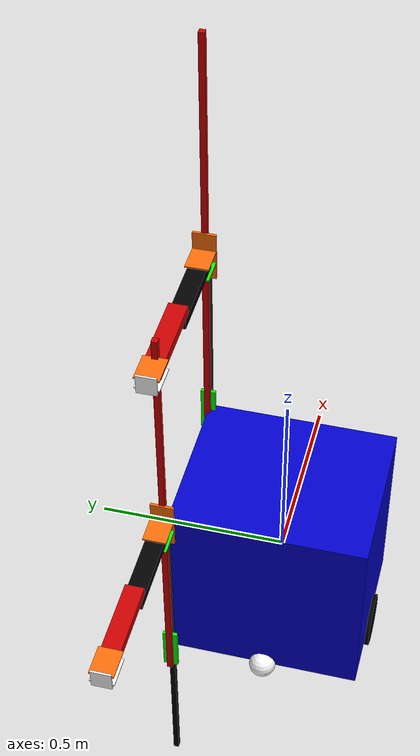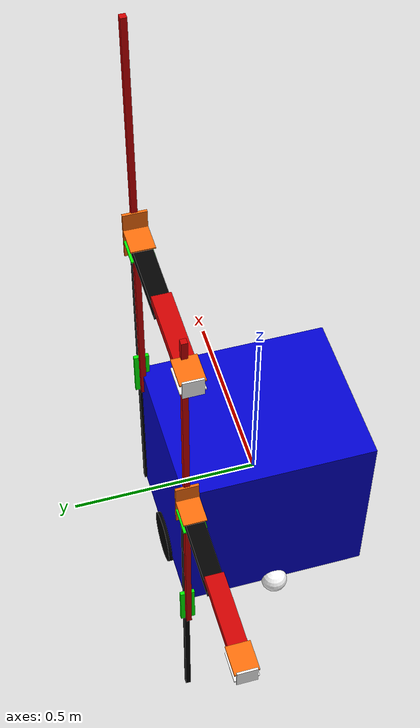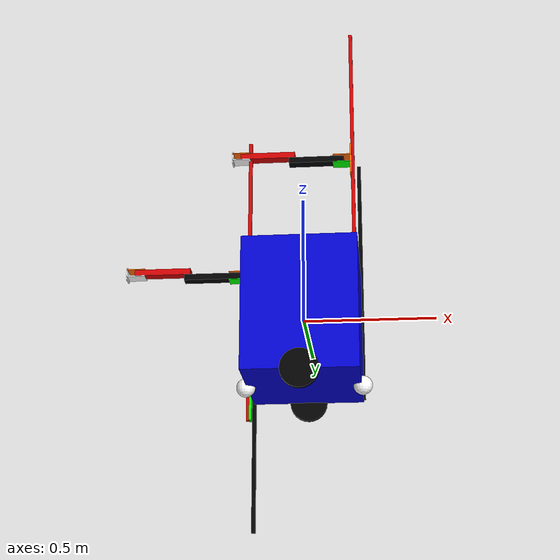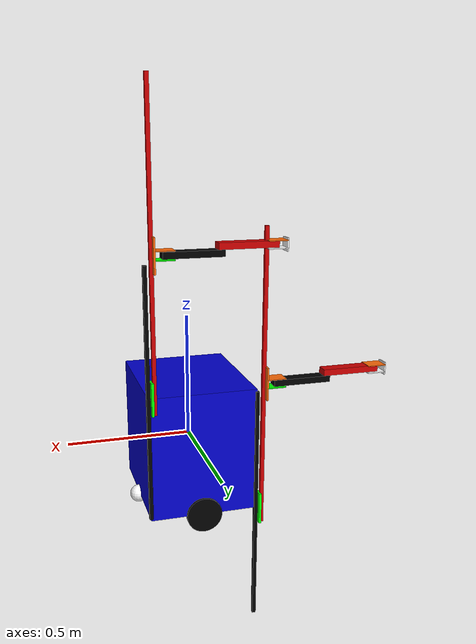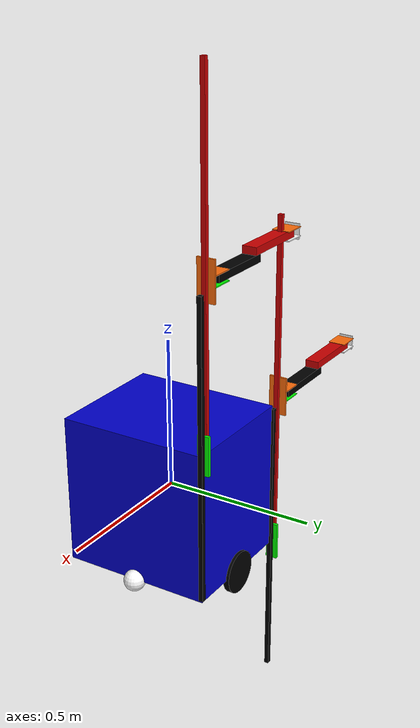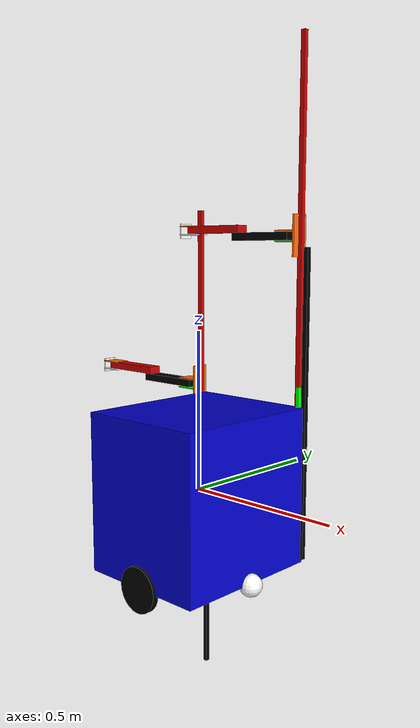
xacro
<?xml version="1.0"?>
<robot xmlns:xacro="http://www.ros.org/wiki/xacro" name="robot">

   <material name="black">
    <color rgba="0.0 0.0 0.0 1.0"/>
  </material>

  <material name="blue">
    <color rgba="0.0 0.0 0.8 1.0"/>
  </material>

  <material name="green">
    <color rgba="0.0 1.0 0.0 1.0"/>
  </material>

  <material name="grey">
    <color rgba="0.2 0.2 0.2 1.0"/>
  </material>

  <material name="orange">
    <color rgba="${255/255} ${108/255} ${10/255} 1.0"/>
  </material>

  <material name="brown">
    <color rgba="${222/255} ${207/255} ${195/255} 1.0"/>
  </material>

  <material name="red">
    <color rgba="0.8 0.0 0.0 1.0"/>
  </material>

  <material name="white">
    <color rgba="1.0 1.0 1.0 1.0"/>
  </material>

  <xacro:property name="PI" value="3.1415926535897931"/>
  <xacro:property name="base_mass" value="0.3" /> <!-- arbitrary value for base mass -->
  <xacro:property name="base_width" value="0.51" />
  <xacro:property name="base_length" value="0.43" />
  <xacro:property name="base_height" value="0.51" />
  <xacro:property name="wheel_mass" value="0.3" /> <!-- arbitrary value for wheel mass -->
  <xacro:property name="wheel_color" value="blue" />
  <xacro:property name="wheel_len" value="0.020" />
  <xacro:property name="wheel_radius" value="0.072" />
  <xacro:property name="caster_wheel_mass" value="0.1" /> <!-- arbitrary value for caster wheel mass -->
  <xacro:property name="caster_wheel_radius" value="${wheel_radius/2}" />
  <xacro:property name="z_offset" value="-${base_height/2}" /> <!-- Space btw top of beam and the each joint -->

  <xacro:property name="s0_tower_width"  value="0.015" />
  <xacro:property name="s0_tower_length" value="0.015" />
  <xacro:property name="s0_tower_height" value="1.0" />
  <xacro:property name="s0_tower_mass" value="1.0" />
  <xacro:property name="s0_tower_color" value="black" />

  <xacro:property name="s1_tower_width"  value="0.015" />
  <xacro:property name="s1_tower_length" value="0.015" />
  <xacro:property name="s1_tower_height" value="1.2" />
  <xacro:property name="s1_tower_mass" value="1.0" />
  <xacro:property name="s1_tower_color" value="red" />

  <xacro:property name="s0_slider_width"  value="0.01" />
  <xacro:property name="s0_slider_length" value="0.04" />
  <xacro:property name="s0_slider_height" value="0.131" />
  <xacro:property name="s0_slider_mass" value="1" />
  <xacro:property name="s0_slider_color" value="green" />

  <xacro:property name="s1_slider_width" value="0.007" />
  <xacro:property name="s1_slider_length" value="0.060" />
  <xacro:property name="s1_slider_height" value="0.131" />
  <xacro:property name="s1_slider_mass" value="1" />
  <xacro:property name="s1_slider_color" value="orange" />

  <xacro:property name="s1_slider_bracket_width" value="0.075" />
  <xacro:property name="s1_slider_bracket_length" value="0.060" />
  <xacro:property name="s1_slider_bracket_height" value="0.0035" />
  <xacro:property name="s1_slider_bracket_mass" value="1" />
  <xacro:property name="s1_slider_bracket_color" value="orange" />

  <xacro:property name="arm_l0_width" value="0.0475" />
  <xacro:property name="arm_l0_length" value="0.23" />
  <xacro:property name="arm_l0_height" value="0.025" />
  <xacro:property name="arm_l0_mass" value="1" />
  <xacro:property name="arm_l0_color" value="black" />

  <xacro:property name="arm_l1_width" value="0.0475" />
  <xacro:property name="arm_l1_length" value="0.23" />
  <xacro:property name="arm_l1_height" value="0.025" />
  <xacro:property name="arm_l1_mass" value="1" />
  <xacro:property name="arm_l1_color" value="red" />

  <xacro:property name="arm_l2_width" value="0.05" />
  <xacro:property name="arm_l2_length" value="0.005" />
  <xacro:property name="arm_l2_height" value="0.05" />
  <xacro:property name="arm_l2_mass" value="1" />
  <xacro:property name="arm_l2_color" value="white" />

  <xacro:property name="arm_l2_bracket_width" value="0.06" />
  <xacro:property name="arm_l2_bracket_length" value="0.075" />
  <xacro:property name="arm_l2_bracket_height" value="0.0035" />
  <xacro:property name="arm_l2_bracket_mass" value="1" />
  <xacro:property name="arm_l2_bracket_color" value="orange" />

   <link name="base_link">
     <visual>
        <origin xyz="0 0 0" rpy="0 0 0"/>
        <geometry>
           <box size="${base_length} ${base_width} ${base_height}" />
        </geometry>
        <material name="blue"/>
	</visual>
    </link>

   <!-- left wheel Link -->
    <link name="left_wheel">
      <collision>
        <origin xyz="0 0 0" rpy="${PI/2} 0 0"/>
        <geometry>
          <cylinder length="${wheel_len}" radius="${wheel_radius}"/>
        </geometry>
      </collision>

      <visual>
        <origin xyz="0 0 0" rpy="${PI/2} 0 0"/>
        <geometry>
          <cylinder length="${wheel_len}" radius="${wheel_radius}"/>
        </geometry>
        <material name="black"/>
      </visual>

      <inertial>
        <origin xyz="0 0 0" rpy="${PI/2} 0 0"/>
        <mass value="${wheel_mass}"/>
        <inertia
          ixx="${wheel_mass / 12.0 * (3*wheel_radius + wheel_len*wheel_len)}" ixy="0.0" ixz="0.0"
          iyy="${wheel_mass / 12.0 * wheel_radius*wheel_radius}" iyz="0.0"
          izz="${wheel_mass / 12.0 * wheel_radius*wheel_radius}"/>
        </inertial>
      </link>

  <joint name="left_wheel_joint" type="continuous">
      <parent link="base_link"/>
      <child link="left_wheel"/>
      <origin xyz="0 ${base_width/2} ${z_offset}" rpy="0 0 0"/>
      <axis xyz="0 1 0"/>
      <dynamics damping="0.2"/>
    </joint>

   <joint name="right_wheel_joint" type="continuous">
      <parent link="base_link"/>
      <child link="right_wheel"/>
      <origin xyz="0 ${-base_width/2} ${z_offset}" rpy="0 0 0"/>
      <axis xyz="0 1 0"/>
      <dynamics damping="0.2"/>
    </joint>

   <!-- right wheel Link -->
    <link name="right_wheel">
      <collision>
        <origin xyz="0 0 0" rpy="${PI/2} 0 0"/>
        <geometry>
          <cylinder length="${wheel_len}" radius="${wheel_radius}"/>
        </geometry>
      </collision>

      <visual>
        <origin xyz="0 0 0" rpy="${PI/2} 0 0"/>
        <geometry>
          <cylinder length="${wheel_len}" radius="${wheel_radius}"/>
        </geometry>
        <material name="black"/>
      </visual>

      <inertial>
        <origin xyz="0 0 0" rpy="${PI/2} 0 0"/>
        <mass value="${wheel_mass}"/>
        <inertia
          ixx="${wheel_mass / 12.0 * (3*wheel_radius + wheel_len*wheel_len)}" ixy="0.0" ixz="0.0"
          iyy="${wheel_mass / 12.0 * wheel_radius*wheel_radius}" iyz="0.0"
          izz="${wheel_mass / 12.0 * wheel_radius*wheel_radius}"/>
        </inertial>
      </link>

    <joint name="caster_frontal_wheel_joint" type="fixed">
      <parent link="base_link"/>
      <child link="caster_frontal_wheel"/>
      <origin xyz="${base_width/2 - caster_wheel_radius} 0 ${z_offset}" rpy="0 0 0"/>
    </joint>

    <!-- caster frontal wheel Link -->
    <link name="caster_frontal_wheel">
      <collision>
        <origin xyz="0 0 0" rpy="0 0 0"/>
        <geometry>
          <sphere radius="${caster_wheel_radius}"/>
        </geometry>
      </collision>

      <visual>
        <origin xyz="0 0 0" rpy="0 0 0"/>
        <geometry>
          <sphere radius="${caster_wheel_radius}"/>
        </geometry>
        <material name="white"/>
      </visual>

      <inertial>
        <origin xyz="0 0 0" rpy="0 0 0"/>
        <mass value="${caster_wheel_mass}"/>
        <inertia
          ixx="${caster_wheel_mass * 0.4 * (caster_wheel_radius * caster_wheel_radius)}" ixy="0.0" ixz="0.0"
          iyy="${caster_wheel_mass * 0.4 * (caster_wheel_radius * caster_wheel_radius)}" iyz="0.0"
          izz="${caster_wheel_mass * 0.4 * (caster_wheel_radius * caster_wheel_radius)}"/>
        </inertial>
      </link>

    <joint name="caster_rear_wheel_joint" type="fixed">
      <parent link="base_link"/>
      <child link="caster_rear_wheel"/>
      <origin xyz="${-base_width/2 + caster_wheel_radius} 0 ${z_offset}" rpy="0 0 0"/>
    </joint>

    <!-- caster rear wheel Link -->
    <link name="caster_rear_wheel">
      <collision>
        <origin xyz="0 0 0" rpy="0 0 0"/>
        <geometry>
          <sphere radius="${caster_wheel_radius}"/>
        </geometry>
      </collision>

      <visual>
        <origin xyz="0 0 0" rpy="0 0 0"/>
        <geometry>
          <sphere radius="${caster_wheel_radius}"/>
        </geometry>
        <material name="white"/>
      </visual>

      <inertial>
        <origin xyz="0 0 0" rpy="0 0 0"/>
        <mass value="${caster_wheel_mass}"/>
        <inertia
          ixx="${caster_wheel_mass * 0.4 * (caster_wheel_radius * caster_wheel_radius)}" ixy="0.0" ixz="0.0"
          iyy="${caster_wheel_mass * 0.4 * (caster_wheel_radius * caster_wheel_radius)}" iyz="0.0"
          izz="${caster_wheel_mass * 0.4 * (caster_wheel_radius * caster_wheel_radius)}"/>
        </inertial>
      </link>

  <link name="LT_S0_T">
    <visual>
         <geometry>
         <box size="${s0_tower_length} ${s0_tower_width} ${s0_tower_height} "/>
         </geometry>
         <material name="${s0_tower_color}"/>
     </visual>
    <collision>
         <geometry>
         <box size="${s0_tower_length} ${s0_tower_width} ${s0_tower_height} "/>
         </geometry>
      </collision>
  </link>

  <joint name="LT_J_S0_BASE_TO_T" type="fixed">
      <parent link="base_link"/>
      <child link="LT_S0_T"/>
      <origin xyz="${base_length/2} ${base_width/2} ${-z_offset}" rpy="0 0 ${PI/2}"/>
 </joint>

  <link name="L_S0_SL">
     <visual>
         <geometry>
           <box size="${s0_slider_length} ${s0_slider_width} ${s0_slider_height}" />
         </geometry>
        <material name="${s0_slider_color}"/>
      </visual>
     <collision>
         <geometry>
           <box size="${s0_slider_length} ${s0_slider_width} ${s0_slider_height}" />
         </geometry>
     </collision>
  </link>

  <joint name="LT_J_S0_T_TO_SL" type="prismatic">
      <parent link="LT_S0_T"/>
      <child link ="L_S0_SL"/>
      <origin rpy="0 0 0" xyz="0 ${s0_tower_length} 0"/>
	<axis xyz="0 0 1"/>
      <limit  lower="${-s0_tower_height/2}" upper="${s0_tower_height/2}" velocity="1.0" effort="1"/>
  </joint>

  <link name="L_S1_T">
     <visual>
         <geometry>
           <box size="${s1_tower_length}  ${s1_tower_width} ${s1_tower_height}"/>
         </geometry>
         <material name="${s1_tower_color}"/>
     </visual>
     <collision>
         <geometry>
           <box size="${s1_tower_length}  ${s1_tower_width} ${s1_tower_height}"/>
         </geometry>
      </collision>
  </link>

  <joint name="LT_J_S0_SL_TO_S1_T" type="fixed">

      <parent link ="L_S0_SL"/>
      <child   link="L_S1_T"/>
      <origin rpy="0 0 0" xyz="0 ${s0_slider_width} ${s1_tower_height/2 - s0_slider_height/2}"/>
  </joint>

  <link name="L_S1_U_SL" >
     <visual>
         <geometry>
          <box size="${s1_slider_length} ${s1_slider_width} ${s1_slider_height}" />
         </geometry>
         <material name="${s1_slider_color}"/>
     </visual>
     <collision>
         <geometry>
          <box size="${s1_slider_length} ${s1_slider_width} ${s1_slider_height}" />
         </geometry>
       </collision>
  </link>

 <joint name="LT_J_S1_T_TO_U_SL" type="prismatic">

      <parent link ="L_S1_T"/>
      <child   link="L_S1_U_SL" />
      <origin rpy="0 0 0" xyz="0 ${s0_tower_length/2} 0"/>
	<axis xyz="0 0 1"/>
      <limit  lower="${-s1_tower_height/2}" upper="${s1_tower_height/2}" velocity="1.0" effort="1"/>
  </joint>

  <link name="L_S1_SL_B0">
     <visual>
         <geometry>
           <box size="${s1_slider_bracket_length} ${s1_slider_bracket_width} ${s1_slider_bracket_height}" />
         </geometry>
        <material name="${s1_slider_color}"/>
      </visual>
    <collision>
         <geometry>
           <box size="${s1_slider_bracket_length} ${s1_slider_bracket_width} ${s1_slider_bracket_height}" />
         </geometry>
      </collision>
  </link>

  <link name="L_S1_SL_B1">
     <visual>
         <geometry>
           <box size="${s1_slider_bracket_length} ${s1_slider_bracket_width} ${s1_slider_bracket_height}" />
         </geometry>
        <material name="${s0_slider_color}"/>
      </visual>
     <collision>
         <geometry>
           <box size="${s1_slider_bracket_length} ${s1_slider_bracket_width} ${s1_slider_bracket_height}" />
         </geometry>
       </collision>
  </link>

  <joint name="LT_J_S1_SL_TO_B0" type="fixed">
      <parent link="L_S1_U_SL"/>
      <child link ="L_S1_SL_B0"/>
      <origin rpy="0 0 0" xyz="0 ${s1_slider_bracket_width/2}  ${arm_l0_height/2 + 0.004}"/>
  </joint>

  <joint name="LT_J_S1_SL_TO_B1" type="fixed">
      <parent link="L_S1_U_SL"/>
      <child link ="L_S1_SL_B1"/>
      <origin rpy="0 0 0" xyz="0 ${s1_slider_bracket_width/2} ${-arm_l0_height/2 - 0.004} "/>
  </joint>

  <link name="L_S1_U_A_L0">
     <visual>
         <geometry>
            <box size="${arm_l0_length} ${arm_l0_width} ${arm_l0_height}" />
         </geometry>
         <origin rpy="0 0 0" xyz="0.10 0  0" />
         <material name="${arm_l0_color}"/>
     </visual>
     <collision>

         <geometry>
            <box size="${arm_l0_length} ${arm_l0_width} ${arm_l0_height}" />
         </geometry>
         <origin rpy="0 0 0" xyz="0.10 0  0" />
      </collision>
  </link>

  <joint name="LA_J_S1_U_SL_TO_A_L0" type="revolute">

      <parent link ="L_S1_SL_B1"/>
      <child   link="L_S1_U_A_L0" />
      <origin rpy="0 0 ${PI/2}" xyz="0 ${s1_slider_width}  ${arm_l0_height/2 + 0.004}"/>
      <axis xyz="0 0 1"/>
      <limit  lower="${-PI/2-0.35}" upper="${PI/2+0.35}" velocity="1.0" effort="1"/>
  </joint>

  <link name="L_S1_U_A_L1">
     <visual>
         <geometry>
            <box size="${arm_l1_length} ${arm_l1_width} ${arm_l1_height}" />
         </geometry>
        <origin rpy="0 0 0" xyz="0.10 0  0" />
          <material name="${arm_l1_color}"/>
     </visual>
    <collision>
         <geometry>
            <box size="${arm_l1_length} ${arm_l1_width} ${arm_l1_height}" />
         </geometry>
        <origin rpy="0 0 0" xyz="0.10 0  0" />
     </collision>
  </link>

  <joint name="LA_J_S1_U_A_L0_TO_L1" type="revolute">

      <parent link ="L_S1_U_A_L0"/>
      <child  link ="L_S1_U_A_L1" />
	<axis xyz="0 0 1"/>
      <origin rpy="0 0 0" xyz=" ${arm_l1_length-0.025} 0 ${arm_l0_height}"/>
      <limit  lower="${-PI/2 -0.35}" upper="${PI/2 +0.35}" velocity="1.0" effort="1"/>
  </joint>

  <link name="L_S1_U_A_L2">
     <visual>
         <geometry>
            <box size="${arm_l2_length} ${arm_l2_width} ${arm_l2_height}" />
         </geometry>

       <material name="${arm_l2_color}"/>
      </visual>
    <collision>
         <geometry>
            <box size="${arm_l2_length} ${arm_l2_width} ${arm_l2_height}" />
         </geometry>

      </collision>
  </link>

  <link name="L_S1_U_A_L2_B0">
     <visual>
         <geometry>
           <box size="${arm_l2_bracket_length} ${arm_l2_bracket_width} ${arm_l2_bracket_height}" />
         </geometry>
        <material name="${arm_l2_bracket_color}"/>
      </visual>
     <collision>
         <geometry>
           <box size="${arm_l2_bracket_length} ${arm_l2_bracket_width} ${arm_l2_bracket_height}" />
         </geometry>
       </collision>
  </link>

 <link name="L_S1_U_A_L2_B1">
     <visual>
         <geometry>
           <box size="${arm_l2_bracket_length} ${arm_l2_bracket_width} ${arm_l2_bracket_height}" />
         </geometry>
        <material name="white"/>
      </visual>
    <collision>
         <geometry>
           <box size="${arm_l2_bracket_length} ${arm_l2_bracket_width} ${arm_l2_bracket_height}" />
         </geometry>
        </collision>
  </link>

  <joint name="LA_J_L_S1_U_A_L2_B0" type="fixed">
      <parent link="L_S1_U_A_L2"/>
      <child link ="L_S1_U_A_L2_B0"/>
      <origin rpy="0 0 0" xyz="${-arm_l2_bracket_length/2} 0  ${arm_l2_height/4 +0.0035 }"/>
  </joint>

  <joint name="LA_J_L_S1_U_A_L2_B1" type="fixed">
      <parent link="L_S1_U_A_L2_B1"/>
      <child link ="L_S1_U_A_L2"/>
      <origin rpy="0 0 0" xyz="${arm_l2_bracket_length/2} 0 ${arm_l2_height/4} "/>
  </joint>

   <joint name="LA_J_S1_U_A_L1_TO_L2_B1" type="revolute">

      <parent link ="L_S1_U_A_L1"/>
      <child  link= "L_S1_U_A_L2_B1" />
      <origin rpy="0 0 0" xyz="${arm_l1_length -0.02 } 0 ${-arm_l1_height/2 -0.0035}"/>
	<axis xyz=" 0 0 1"/>
      <limit  lower="${-PI/2}" upper="${PI/2}" velocity="1.0" effort="1"/>
  </joint>

  <link name="RT_S0_T">
    <visual>
         <geometry>
         <box size="${s0_tower_length} ${s0_tower_width} ${s0_tower_height} "/>
         </geometry>
         <material name="${s0_tower_color}"/>
     </visual>
   <collision>
         <geometry>
         <box size="${s0_tower_length} ${s0_tower_width} ${s0_tower_height} "/>
         </geometry>
     </collision>
    </link>

  <joint name="RT_J_S0_BASE_TO_T" type="fixed">
      <parent link="base_link"/>
      <child link="RT_S0_T"/>
      <origin xyz="${-base_length/2} ${base_width/2} ${z_offset}" rpy="0 0 ${PI/2}"/>
 </joint>

  <link name="R_S0_SL">
     <visual>
         <geometry>
           <box size="${s0_slider_length} ${s0_slider_width} ${s0_slider_height}" />
         </geometry>
        <material name="${s0_slider_color}"/>
      </visual>
     <collision>
         <geometry>
           <box size="${s0_slider_length} ${s0_slider_width} ${s0_slider_height}" />
         </geometry>
        </collision>
  </link>

  <joint name="RT_J_S0_T_TO_SL" type="prismatic">
      <parent link="RT_S0_T"/>
      <child link ="R_S0_SL"/>
      <origin rpy="0 0 0" xyz="0 ${s0_tower_length} 0"/>
	<axis xyz="0 0 1"/>
      <limit  lower="${-s0_tower_height/2}" upper="${s0_tower_height/2}" velocity="1.0" effort="1"/>
  </joint>

  <link name="R_S1_T">
     <visual>
         <geometry>
           <box size="${s1_tower_length}  ${s1_tower_width} ${s1_tower_height}"/>
         </geometry>
         <material name="${s1_tower_color}"/>
     </visual>
     <collision>
         <geometry>
           <box size="${s1_tower_length}  ${s1_tower_width} ${s1_tower_height}"/>
         </geometry>
     </collision>
  </link>

  <joint name="RT_J_S0_SR_TO_S1_T" type="fixed">

      <parent link ="R_S0_SL"/>
      <child   link="R_S1_T"/>
      <origin rpy="0 0 0" xyz="0 ${s0_slider_width} ${s1_tower_height/2 - s0_slider_height/2}"/>
  </joint>

  <link name="R_S1_U_SL" >
     <visual>
         <geometry>
          <box size="${s1_slider_length} ${s1_slider_width} ${s1_slider_height}" />
         </geometry>
         <material name="${s1_slider_color}"/>
     </visual>
     <collision>
         <geometry>
          <box size="${s1_slider_length} ${s1_slider_width} ${s1_slider_height}" />
         </geometry>
      </collision>
  </link>

 <joint name="RT_J_S1_T_TO_U_SL" type="prismatic">

      <parent link ="R_S1_T"/>
      <child   link="R_S1_U_SL" />
      <origin rpy="0 0 0" xyz="0 ${s0_tower_length/2} 0"/>
	<axis xyz="0 0 1"/>
      <limit  lower="${-s1_tower_height/2}" upper="${s1_tower_height/2}" velocity="1.0" effort="1"/>
  </joint>

  <link name="R_S1_SR_B0">
     <visual>
         <geometry>
           <box size="${s1_slider_bracket_length} ${s1_slider_bracket_width} ${s1_slider_bracket_height}" />
         </geometry>
        <material name="${s1_slider_color}"/>
      </visual>
     <collision>
         <geometry>
           <box size="${s1_slider_bracket_length} ${s1_slider_bracket_width} ${s1_slider_bracket_height}" />
         </geometry>
       </collision>
  </link>

  <link name="R_S1_SR_B1">
     <visual>
         <geometry>
           <box size="${s1_slider_bracket_length} ${s1_slider_bracket_width} ${s1_slider_bracket_height}" />
         </geometry>
        <material name="${s0_slider_color}"/>
      </visual>
     <collision>
         <geometry>
           <box size="${s1_slider_bracket_length} ${s1_slider_bracket_width} ${s1_slider_bracket_height}" />
         </geometry>
        </collision>
  </link>

  <joint name="RT_J_S1_SR_TO_B0" type="fixed">
      <parent link="R_S1_U_SL"/>
      <child link ="R_S1_SR_B0"/>
      <origin rpy="0 0 0" xyz="0 ${s1_slider_bracket_width/2}  ${arm_l0_height/2 + 0.004}"/>
  </joint>

  <joint name="RT_J_S1_SR_TO_B1" type="fixed">
      <parent link="R_S1_U_SL"/>
      <child link ="R_S1_SR_B1"/>
      <origin rpy="0 0 0" xyz="0 ${s1_slider_bracket_width/2} ${-arm_l0_height/2 - 0.004} "/>
  </joint>

  <link name="R_S1_U_A_L0">
     <visual>
         <geometry>
            <box size="${arm_l0_length} ${arm_l0_width} ${arm_l0_height}" />
         </geometry>
         <origin rpy="0 0 0" xyz="0.10 0  0" />
         <material name="${arm_l0_color}"/>
      </visual>
     <collision>
         <geometry>
            <box size="${arm_l0_length} ${arm_l0_width} ${arm_l0_height}" />
         </geometry>
         <origin rpy="0 0 0" xyz="0.10 0  0" />
       </collision>
  </link>

  <joint name="RA_J_S1_U_SR_TO_A_L0" type="revolute">

      <parent link ="R_S1_SR_B1"/>
      <child   link="R_S1_U_A_L0" />
      <origin rpy="0 0 ${PI/2}" xyz="0 ${s1_slider_width}  ${arm_l0_height/2 + 0.004}"/>
      <axis xyz="0 0 1"/>
      <limit  lower="${-PI/2-0.35}" upper="${PI/2+0.35}" velocity="1.0" effort="1"/>
  </joint>

  <link name="R_S1_U_A_L1">
     <visual>
         <geometry>
            <box size="${arm_l1_length} ${arm_l1_width} ${arm_l1_height}" />
         </geometry>
        <origin rpy="0 0 0" xyz="0.10 0  0" />
          <material name="${arm_l1_color}"/>
     </visual>
     <collision>
         <geometry>
            <box size="${arm_l1_length} ${arm_l1_width} ${arm_l1_height}" />
         </geometry>
        <origin rpy="0 0 0" xyz="0.10 0  0" />
      </collision>
  </link>

  <joint name="RA_J_S1_U_A_L0_TO_L1" type="revolute">

      <parent link ="R_S1_U_A_L0"/>
      <child  link ="R_S1_U_A_L1" />
	<axis xyz="0 0 1"/>
      <origin rpy="0 0 0" xyz=" ${arm_l1_length-0.025} 0 ${arm_l0_height}"/>
      <limit  lower="${-PI/2 -0.35}" upper="${PI/2 +0.35}" velocity="1.0" effort="1"/>
  </joint>

  <link name="R_S1_U_A_L2">
     <visual>
         <geometry>
            <box size="${arm_l2_length} ${arm_l2_width} ${arm_l2_height}" />
         </geometry>
       <material name="${arm_l2_color}"/>
      </visual>
     <collision>
         <geometry>
            <box size="${arm_l2_length} ${arm_l2_width} ${arm_l2_height}" />
         </geometry>
       </collision>
  </link>

  <link name="R_S1_U_A_L2_B0">
     <visual>
         <geometry>
           <box size="${arm_l2_bracket_length} ${arm_l2_bracket_width} ${arm_l2_bracket_height}" />
         </geometry>
        <material name="${arm_l2_bracket_color}"/>
      </visual>
     <collision>
         <geometry>
           <box size="${arm_l2_bracket_length} ${arm_l2_bracket_width} ${arm_l2_bracket_height}" />
         </geometry>
      </collision>
  </link>

 <link name="R_S1_U_A_L2_B1">
     <visual>
         <geometry>
           <box size="${arm_l2_bracket_length} ${arm_l2_bracket_width} ${arm_l2_bracket_height}" />
         </geometry>
        <material name="white"/>
      </visual>
     <collision>
         <geometry>
           <box size="${arm_l2_bracket_length} ${arm_l2_bracket_width} ${arm_l2_bracket_height}" />
         </geometry>
       </collision>
  </link>

  <joint name="RA_J_R_S1_U_A_L2_B0" type="fixed">
      <parent link="R_S1_U_A_L2"/>
      <child link ="R_S1_U_A_L2_B0"/>
      <origin rpy="0 0 0" xyz="${-arm_l2_bracket_length/2} 0  ${arm_l2_height/4 +0.0035 }"/>
  </joint>

  <joint name="RA_J_R_S1_U_A_L2_B1" type="fixed">
      <parent link="R_S1_U_A_L2_B1"/>
      <child link ="R_S1_U_A_L2"/>
      <origin rpy="0 0 0" xyz="${arm_l2_bracket_length/2} 0 ${arm_l2_height/4} "/>
  </joint>

  <joint name="RA_J_S1_U_A_L1_TO_L2_B1" type="revolute">

      <parent link ="R_S1_U_A_L1"/>
      <child  link= "R_S1_U_A_L2_B1" />
      <origin rpy="0 0 0" xyz="${arm_l1_length -0.02 } 0 ${-arm_l1_height/2 -0.0035}"/>
	<axis xyz=" 0 0 1"/>
      <limit  lower="${-PI/2}" upper="${PI/2}" velocity="1.0" effort="1"/>
  </joint>

  <xacro:include filename="$(find cobo_arm_control)/ros2_control/cobo.ros2_control.xacro" />
  <xacro:cobo_ros2_control name="cobo"/>

</robot>
